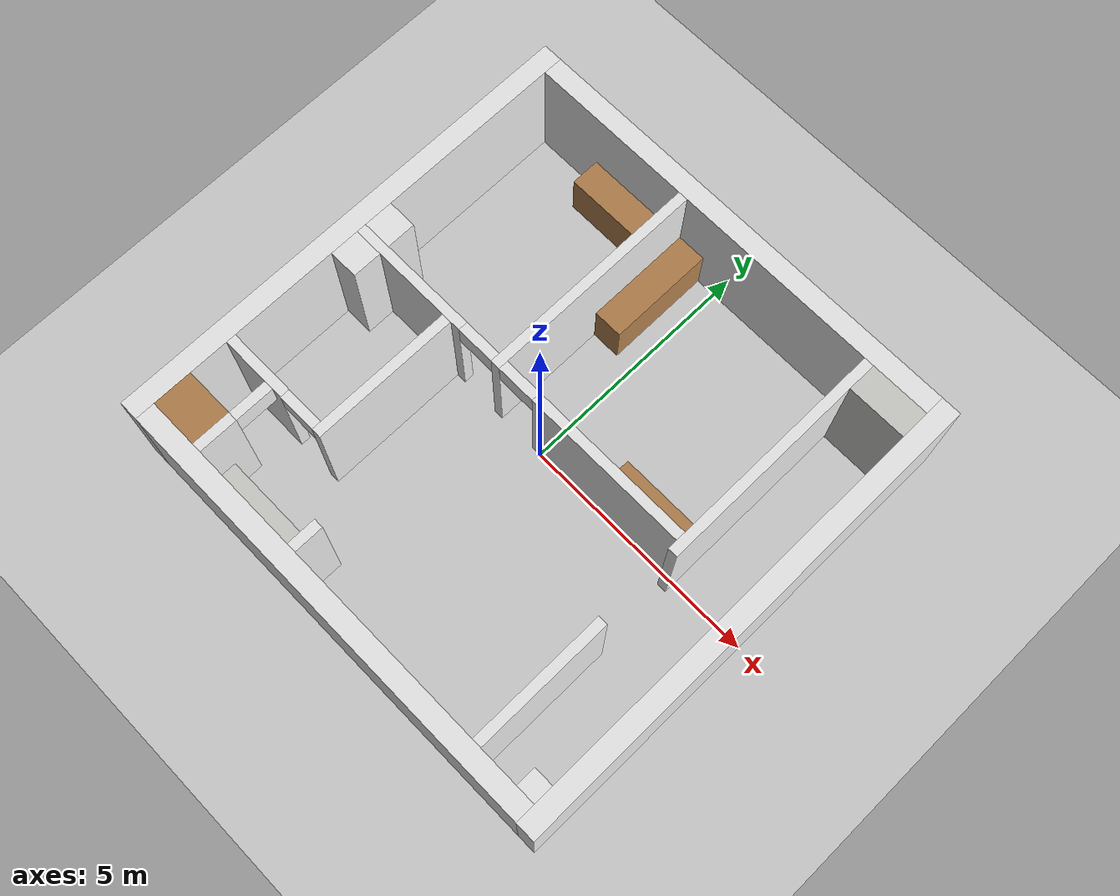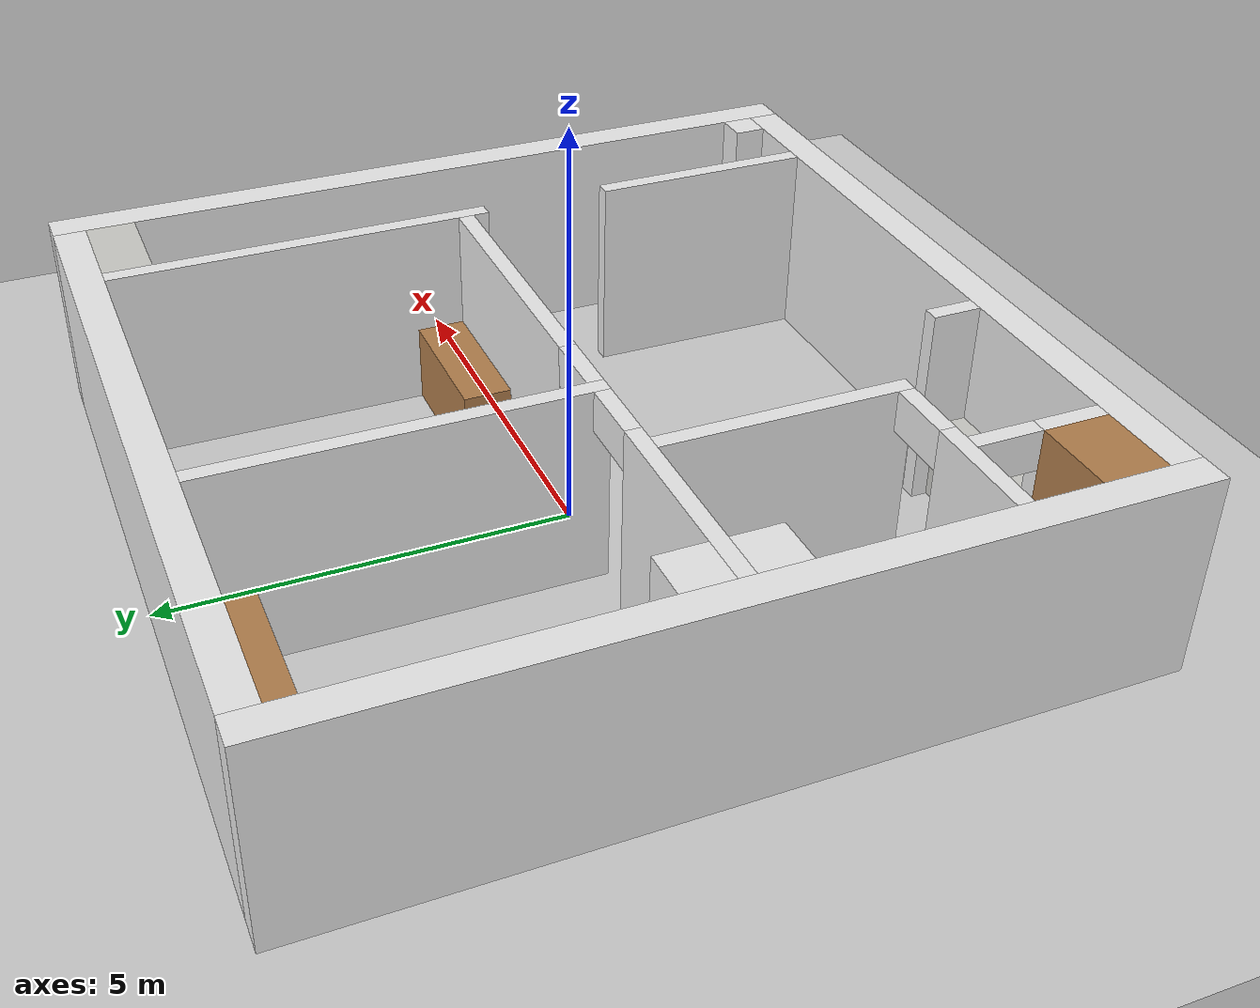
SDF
<sdf version="1.7">
 <world name="default">
  <light name="sun" type="directional">
   <pose>0 0 10 0 -0 0</pose>
   <diffuse>0.8 0.8 0.8 1</diffuse>
   <specular>0.2 0.2 0.2 1</specular>
   <attenuation>
    <range>1000</range>
    <constant>0.9</constant>
    <linear>0.01</linear>
    <quadratic>0.001</quadratic>
   </attenuation>
   <direction>-0.5 0.1 -0.9</direction>
   <spot><inner_angle>0</inner_angle><outer_angle>0</outer_angle><falloff>0</falloff></spot>
  </light>
  <model name="ground_plane">
   <static>1</static>
   <link name="link">
    <collision name="collision">
     <geometry><plane><normal>0 0 1</normal><size>100 100</size></plane></geometry>
     <surface><friction><ode><mu>100</mu><mu2>50</mu2></ode></friction></surface>
    </collision>
    <visual name="visual">
     <cast_shadows>0</cast_shadows>
     <geometry><plane><normal>0 0 1</normal><size>100 100</size></plane></geometry>
     <material>
      <script><uri>file://media/materials/scripts/gazebo.material</uri><name>Gazebo/Grey</name></script>
     </material>
    </visual>
   </link>
  </model>
  <gravity>0 0 -9.8</gravity>
  <magnetic_field>6e-06 2.3e-05 -4.2e-05</magnetic_field>
  <atmosphere type="adiabatic"/>
  <physics type="ode">
   <max_step_size>0.001</max_step_size>
   <real_time_factor>1</real_time_factor>
   <real_time_update_rate>1000</real_time_update_rate>
  </physics>
  <scene><ambient>0.4 0.4 0.4 1</ambient><background>0.7 0.7 0.7 1</background><shadows>1</shadows></scene>
  <audio><device>default</device></audio>
  <spherical_coordinates>
   <surface_model>EARTH_WGS84</surface_model>
   <latitude_deg>0</latitude_deg>
   <longitude_deg>0</longitude_deg>
   <elevation>0</elevation>
   <heading_deg>0</heading_deg>
  </spherical_coordinates>
  <model name="beta_map1">
   <link name="Wall_0">
    <pose>-4.8 0 0 0 -0 0</pose>
    <collision name="Wall_0_Collision">
     <pose>0 0 1.25 0 -0 0</pose>
     <geometry><box><size>0.4 10 2.5</size></box></geometry>
    </collision>
    <visual name="Wall_0_Visual">
     <pose>0 0 1.25 0 -0 0</pose>
     <geometry><box><size>0.4 10 2.5</size></box></geometry>
     <material>
      <script><uri>file://media/materials/scripts/gazebo.material</uri><name>Gazebo/White</name></script>
      <ambient>1 1 1 1</ambient>
     </material>
     <meta><layer>0</layer></meta>
    </visual>
   </link>
   <link name="Wall_1">
    <pose>4.8 0 0 0 -0 0</pose>
    <collision name="Wall_1_Collision">
     <pose>0 0 1.25 0 -0 0</pose>
     <geometry><box><size>0.4 10 2.5</size></box></geometry>
    </collision>
    <visual name="Wall_1_Visual">
     <pose>0 0 1.25 0 -0 0</pose>
     <geometry><box><size>0.4 10 2.5</size></box></geometry>
     <material>
      <script><uri>file://media/materials/scripts/gazebo.material</uri><name>Gazebo/White</name></script>
      <ambient>1 1 1 1</ambient>
     </material>
     <meta><layer>0</layer></meta>
    </visual>
   </link>
   <link name="Wall_2">
    <pose>0 -4.8 0 0 -0 0</pose>
    <collision name="Wall_2_Collision">
     <pose>0 0 1.25 0 -0 0</pose>
     <geometry><box><size>9.2 0.4 2.5</size></box></geometry>
    </collision>
    <visual name="Wall_2_Visual">
     <pose>0 0 1.25 0 -0 0</pose>
     <geometry><box><size>9.2 0.4 2.5</size></box></geometry>
     <material>
      <script><uri>file://media/materials/scripts/gazebo.material</uri><name>Gazebo/White</name></script>
      <ambient>1 1 1 1</ambient>
     </material>
     <meta><layer>0</layer></meta>
    </visual>
   </link>
   <link name="Wall_3">
    <pose>0 4.8 0 0 -0 0</pose>
    <collision name="Wall_3_Collision">
     <pose>0 0 1.25 0 -0 0</pose>
     <geometry><box><size>9.2 0.4 2.5</size></box></geometry>
    </collision>
    <visual name="Wall_3_Visual">
     <pose>0 0 1.25 0 -0 0</pose>
     <geometry><box><size>9.2 0.4 2.5</size></box></geometry>
     <material>
      <script><uri>file://media/materials/scripts/gazebo.material</uri><name>Gazebo/White</name></script>
      <ambient>1 1 1 1</ambient>
     </material>
     <meta><layer>0</layer></meta>
    </visual>
   </link>
   <link name="Wall_4">
    <pose>-1.1 2.3 0 0 -0 0</pose>
    <collision name="Wall_4_Collision">
     <pose>0 0 1.25 0 -0 0</pose>
     <geometry><box><size>0.2 4.6 2.5</size></box></geometry>
    </collision>
    <visual name="Wall_4_Visual">
     <pose>0 0 1.25 0 -0 0</pose>
     <geometry><box><size>0.2 4.6 2.5</size></box></geometry>
     <material>
      <script><uri>file://media/materials/scripts/gazebo.material</uri><name>Gazebo/White</name></script>
      <ambient>1 1 1 1</ambient>
     </material>
     <meta><layer>0</layer></meta>
    </visual>
   </link>
   <link name="Wall_5">
    <pose>-3.3 0.1 0 0 -0 0</pose>
    <collision name="Wall_5_Collision">
     <pose>0 0 1.25 0 -0 0</pose>
     <geometry><box><size>2.6 0.2 2.5</size></box></geometry>
    </collision>
    <visual name="Wall_5_Visual">
     <pose>0 0 1.25 0 -0 0</pose>
     <geometry><box><size>2.6 0.2 2.5</size></box></geometry>
     <material>
      <script><uri>file://media/materials/scripts/gazebo.material</uri><name>Gazebo/White</name></script>
      <ambient>1 1 1 1</ambient>
     </material>
     <meta><layer>0</layer></meta>
    </visual>
   </link>
   <link name="Wall_6">
    <pose>-2.3 -1.5 0 0 -0 0</pose>
    <collision name="Wall_6_Collision">
     <pose>0 0 1.25 0 -0 0</pose>
     <geometry><box><size>0.2 3 2.5</size></box></geometry>
    </collision>
    <visual name="Wall_6_Visual">
     <pose>0 0 1.25 0 -0 0</pose>
     <geometry><box><size>0.2 3 2.5</size></box></geometry>
     <material>
      <script><uri>file://media/materials/scripts/gazebo.material</uri><name>Gazebo/White</name></script>
      <ambient>1 1 1 1</ambient>
     </material>
     <meta><layer>0</layer></meta>
    </visual>
   </link>
   <link name="Wall_7">
    <pose>-3.9 -2.9 0 0 -0 0</pose>
    <collision name="Wall_7_Collision">
     <pose>0 0 1.25 0 -0 0</pose>
     <geometry><box><size>1.4 0.2 2.5</size></box></geometry>
    </collision>
    <visual name="Wall_7_Visual">
     <pose>0 0 1.25 0 -0 0</pose>
     <geometry><box><size>1.4 0.2 2.5</size></box></geometry>
     <material>
      <script><uri>file://media/materials/scripts/gazebo.material</uri><name>Gazebo/White</name></script>
      <ambient>1 1 1 1</ambient>
     </material>
     <meta><layer>0</layer></meta>
    </visual>
   </link>
   <link name="Wall_8">
    <pose>3.3 -3.2 0 0 -0 0</pose>
    <collision name="Wall_8_Collision">
     <pose>0 0 1.25 0 -0 0</pose>
     <geometry><box><size>0.2 2.8 2.5</size></box></geometry>
    </collision>
    <visual name="Wall_8_Visual">
     <pose>0 0 1.25 0 -0 0</pose>
     <geometry><box><size>0.2 2.8 2.5</size></box></geometry>
     <material>
      <script><uri>file://media/materials/scripts/gazebo.material</uri><name>Gazebo/White</name></script>
      <ambient>1 1 1 1</ambient>
     </material>
     <meta><layer>0</layer></meta>
    </visual>
   </link>
   <link name="Wall_9">
    <pose>3.3 2.2 0 0 -0 0</pose>
    <collision name="Wall_9_Collision">
     <pose>0 0 1.25 0 -0 0</pose>
     <geometry><box><size>0.2 4.8 2.5</size></box></geometry>
    </collision>
    <visual name="Wall_9_Visual">
     <pose>0 0 1.25 0 -0 0</pose>
     <geometry><box><size>0.2 4.8 2.5</size></box></geometry>
     <material>
      <script><uri>file://media/materials/scripts/gazebo.material</uri><name>Gazebo/White</name></script>
      <ambient>1 1 1 1</ambient>
     </material>
     <meta><layer>0</layer></meta>
    </visual>
   </link>
   <link name="Wall_10">
    <pose>1.5 0.1 0 0 -0 0</pose>
    <collision name="Wall_10_Collision">
     <pose>0 0 1.25 0 -0 0</pose>
     <geometry><box><size>3.4 0.2 2.5</size></box></geometry>
    </collision>
    <visual name="Wall_10_Visual">
     <pose>0 0 1.25 0 -0 0</pose>
     <geometry><box><size>3.4 0.2 2.5</size></box></geometry>
     <material>
      <script><uri>file://media/materials/scripts/gazebo.material</uri><name>Gazebo/White</name></script>
      <ambient>1 1 1 1</ambient>
     </material>
     <meta><layer>0</layer></meta>
    </visual>
   </link>
   <link name="Wall_11">
    <pose>-1.1 -4.3 0 0 -0 0</pose>
    <collision name="Wall_11_Collision">
     <pose>0 0 1.25 0 -0 0</pose>
     <geometry><box><size>0.2 0.6 2.5</size></box></geometry>
    </collision>
    <visual name="Wall_11_Visual">
     <pose>0 0 1.25 0 -0 0</pose>
     <geometry><box><size>0.2 0.6 2.5</size></box></geometry>
     <material>
      <script><uri>file://media/materials/scripts/gazebo.material</uri><name>Gazebo/White</name></script>
      <ambient>1 1 1 1</ambient>
     </material>
     <meta><layer>0</layer></meta>
    </visual>
   </link>
   <link name="Wall_12">
    <pose>-3.5 -4.2 0 0 -0 0</pose>
    <collision name="Wall_12_Collision">
     <pose>0 0 1.25 0 -0 0</pose>
     <geometry><box><size>0.2 0.8 2.5</size></box></geometry>
    </collision>
    <visual name="Wall_12_Visual">
     <pose>0 0 1.25 0 -0 0</pose>
     <geometry><box><size>0.2 0.8 2.5</size></box></geometry>
     <material>
      <script><uri>file://media/materials/scripts/gazebo.material</uri><name>Gazebo/White</name></script>
      <ambient>1 1 1 1</ambient>
     </material>
     <meta><layer>0</layer></meta>
    </visual>
   </link>
   <link name="Wall_13">
    <pose>-4.3 -0.3 0 0 -0 0</pose>
    <collision name="Wall_13_Collision">
     <pose>0 0 1.25 0 -0 0</pose>
     <geometry><box><size>0.6 0.6 2.5</size></box></geometry>
    </collision>
    <visual name="Wall_13_Visual">
     <pose>0 0 1.25 0 -0 0</pose>
     <geometry><box><size>0.6 0.6 2.5</size></box></geometry>
     <material>
      <script><uri>file://media/materials/scripts/gazebo.material</uri><name>Gazebo/White</name></script>
      <ambient>1 1 1 1</ambient>
     </material>
     <meta><layer>0</layer></meta>
    </visual>
   </link>
   <link name="Wall_14">
    <pose>-4.3 0.5 0 0 -0 0</pose>
    <collision name="Wall_14_Collision">
     <pose>0 0 1.25 0 -0 0</pose>
     <geometry><box><size>0.6 0.6 2.5</size></box></geometry>
    </collision>
    <visual name="Wall_14_Visual">
     <pose>0 0 1.25 0 -0 0</pose>
     <geometry><box><size>0.6 0.6 2.5</size></box></geometry>
     <material>
      <script><uri>file://media/materials/scripts/gazebo.material</uri><name>Gazebo/White</name></script>
      <ambient>1 1 1 1</ambient>
     </material>
     <meta><layer>0</layer></meta>
    </visual>
   </link>
   <link name="Wall_15">
    <pose>-2.2 4.3 0 0 -0 0</pose>
    <collision name="Wall_15_Collision">
     <pose>0 0 0.5 0 -0 0</pose>
     <geometry><box><size>2 0.6 1</size></box></geometry>
    </collision>
    <visual name="Wall_15_Visual">
     <pose>0 0 0.5 0 -0 0</pose>
     <geometry><box><size>2 0.6 1</size></box></geometry>
     <material>
      <script><uri>file://media/materials/scripts/gazebo.material</uri><name>Gazebo/WoodFloor</name></script>
      <ambient>0.5 0.5 0.5 1</ambient>
     </material>
     <meta><layer>0</layer></meta>
    </visual>
   </link>
   <link name="Wall_16">
    <pose>-0.7 3.5 0 0 -0 0</pose>
    <collision name="Wall_16_Collision">
     <pose>0 0 0.5 0 -0 0</pose>
     <geometry><box><size>0.6 2.2 1</size></box></geometry>
    </collision>
    <visual name="Wall_16_Visual">
     <pose>0 0 0.5 0 -0 0</pose>
     <geometry><box><size>0.6 2.2 1</size></box></geometry>
     <material>
      <script><uri>file://media/materials/scripts/gazebo.material</uri><name>Gazebo/WoodFloor</name></script>
      <ambient>0.5 0.5 0.5 1</ambient>
     </material>
     <meta><layer>0</layer></meta>
    </visual>
   </link>
   <link name="Wall_17">
    <pose>2.3 0.5 0 0 -0 0</pose>
    <collision name="Wall_17_Collision">
     <pose>0 0 0.5 0 -0 0</pose>
     <geometry><box><size>1.8 0.6 1</size></box></geometry>
    </collision>
    <visual name="Wall_17_Visual">
     <pose>0 0 0.5 0 -0 0</pose>
     <geometry><box><size>1.8 0.6 1</size></box></geometry>
     <material>
      <script><uri>file://media/materials/scripts/gazebo.material</uri><name>Gazebo/WoodFloor</name></script>
      <ambient>0.5 0.5 0.5 1</ambient>
     </material>
     <meta><layer>0</layer></meta>
    </visual>
   </link>
   <link name="Wall_18">
    <pose>4.4 -4.4 0 0 -0 0</pose>
    <collision name="Wall_18_Collision">
     <pose>0 0 1.25 0 -0 0</pose>
     <geometry><box><size>0.4 0.4 2.5</size></box></geometry>
    </collision>
    <visual name="Wall_18_Visual">
     <pose>0 0 1.25 0 -0 0</pose>
     <geometry><box><size>0.4 0.4 2.5</size></box></geometry>
     <material>
      <script><uri>file://media/materials/scripts/gazebo.material</uri><name>Gazebo/White</name></script>
      <ambient>1 1 1 1</ambient>
     </material>
     <meta><layer>0</layer></meta>
    </visual>
   </link>
   <link name="Wall_19">
    <pose>-2.3 -4.4 0 0 -0 0</pose>
    <collision name="Wall_19_Collision">
     <pose>0 0 0.5 0 -0 0</pose>
     <geometry><box><size>2.2 0.4 1</size></box></geometry>
    </collision>
    <visual name="Wall_19_Visual">
     <pose>0 0 0.5 0 -0 0</pose>
     <geometry><box><size>2.2 0.4 1</size></box></geometry>
     <material>
      <script><uri>file://media/materials/scripts/gazebo.material</uri><name>Gazebo/CeilingTiled</name></script>
      <ambient>0.5 0.5 0.5 1</ambient>
     </material>
     <meta><layer>0</layer></meta>
    </visual>
   </link>
   <link name="Wall_20">
    <pose>-4.1 -4.2 0 0 -0 0</pose>
    <collision name="Wall_20_Collision">
     <pose>0 0 1.25 0 -0 0</pose>
     <geometry><box><size>1 0.8 2.5</size></box></geometry>
    </collision>
    <visual name="Wall_20_Visual">
     <pose>0 0 1.25 0 -0 0</pose>
     <geometry><box><size>1 0.8 2.5</size></box></geometry>
     <material>
      <script><uri>file://media/materials/scripts/gazebo.material</uri><name>Gazebo/WoodFloor</name></script>
      <ambient>0.5 0.5 0.5 1</ambient>
     </material>
     <meta><layer>0</layer></meta>
    </visual>
   </link>
   <link name="Wall_21">
    <pose>4 4.3 0 0 -0 0</pose>
    <collision name="Wall_21_Collision">
     <pose>0 0 1.25 0 -0 0</pose>
     <geometry><box><size>1.2 0.6 2.5</size></box></geometry>
    </collision>
    <visual name="Wall_21_Visual">
     <pose>0 0 1.25 0 -0 0</pose>
     <geometry><box><size>1.2 0.6 2.5</size></box></geometry>
     <material>
      <script><uri>file://media/materials/scripts/gazebo.material</uri><name>Gazebo/CeilingTiled</name></script>
      <ambient>0.5 0.5 0.5 1</ambient>
     </material>
     <meta><layer>0</layer></meta>
    </visual>
   </link>
   <link name="Doorway_0">
    <pose>-1.6 0.1 0 0 -0 0</pose>
    <collision name="Doorway_0_Collision">
     <pose>0 0 2.25 0 -0 0</pose>
     <geometry><box><size>0.8 0.2 0.5</size></box></geometry>
    </collision>
    <visual name="Doorway_0_Visual">
     <pose>0 0 2.25 0 -0 0</pose>
     <geometry><box><size>0.8 0.2 0.5</size></box></geometry>
     <material>
      <script><uri>file://media/materials/scripts/gazebo.material</uri><name>Gazebo/White</name></script>
      <ambient>1 1 1 1</ambient>
     </material>
     <meta><layer>0</layer></meta>
    </visual>
   </link>
   <link name="Doorway_1">
    <pose>-0.6 0.1 0 0 -0 0</pose>
    <collision name="Doorway_1_Collision">
     <pose>0 0 2.25 0 -0 0</pose>
     <geometry><box><size>0.8 0.2 0.5</size></box></geometry>
    </collision>
    <visual name="Doorway_1_Visual">
     <pose>0 0 2.25 0 -0 0</pose>
     <geometry><box><size>0.8 0.2 0.5</size></box></geometry>
     <material>
      <script><uri>file://media/materials/scripts/gazebo.material</uri><name>Gazebo/White</name></script>
      <ambient>1 1 1 1</ambient>
     </material>
     <meta><layer>0</layer></meta>
    </visual>
   </link>
   <link name="Doorway_2">
    <pose>-2.8 -2.9 0 0 -0 0</pose>
    <collision name="Doorway_2_Collision">
     <pose>0 0 2.25 0 -0 0</pose>
     <geometry><box><size>0.8 0.2 0.5</size></box></geometry>
    </collision>
    <visual name="Doorway_2_Visual">
     <pose>0 0 2.25 0 -0 0</pose>
     <geometry><box><size>0.8 0.2 0.5</size></box></geometry>
     <material>
      <script><uri>file://media/materials/scripts/gazebo.material</uri><name>Gazebo/White</name></script>
      <ambient>1 1 1 1</ambient>
     </material>
     <meta><layer>0</layer></meta>
    </visual>
   </link>
   <link name="Doorway_3">
    <pose>-3.5 -3.4 0 0 -0 0</pose>
    <collision name="Doorway_3_Collision">
     <pose>0 0 2.25 0 -0 0</pose>
     <geometry><box><size>0.2 0.8 0.5</size></box></geometry>
    </collision>
    <visual name="Doorway_3_Visual">
     <pose>0 0 2.25 0 -0 0</pose>
     <geometry><box><size>0.2 0.8 0.5</size></box></geometry>
     <material>
      <script><uri>file://media/materials/scripts/gazebo.material</uri><name>Gazebo/White</name></script>
      <ambient>1 1 1 1</ambient>
     </material>
     <meta><layer>0</layer></meta>
    </visual>
   </link>
   <static>1</static>
  </model>
 </world>
</sdf>
